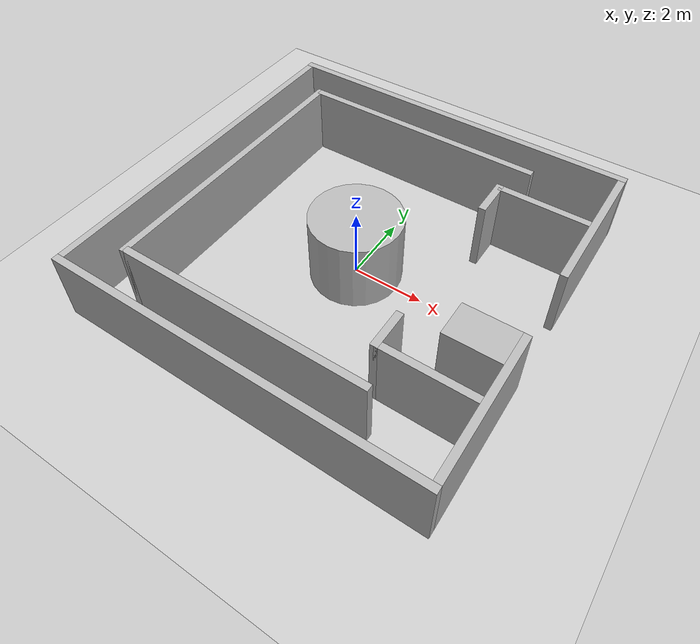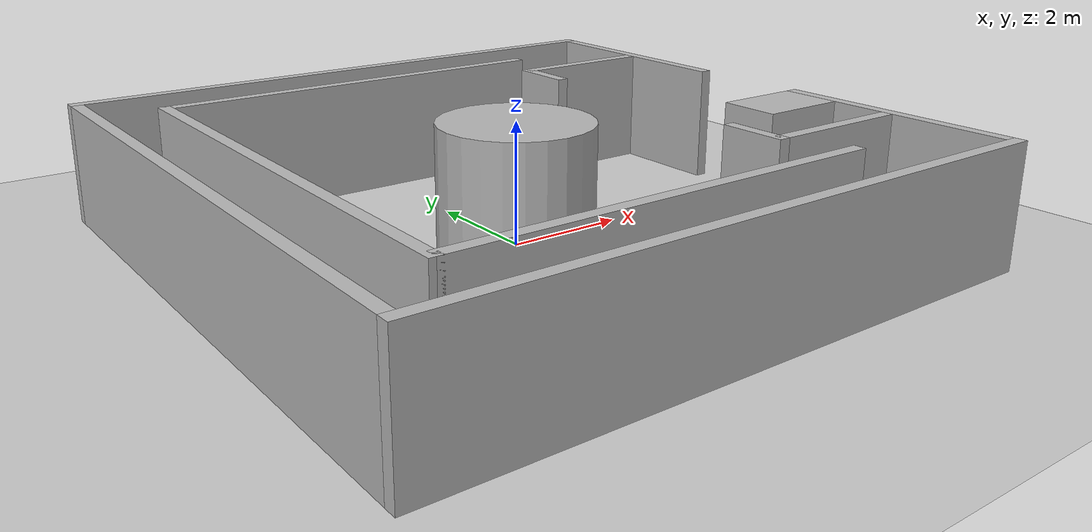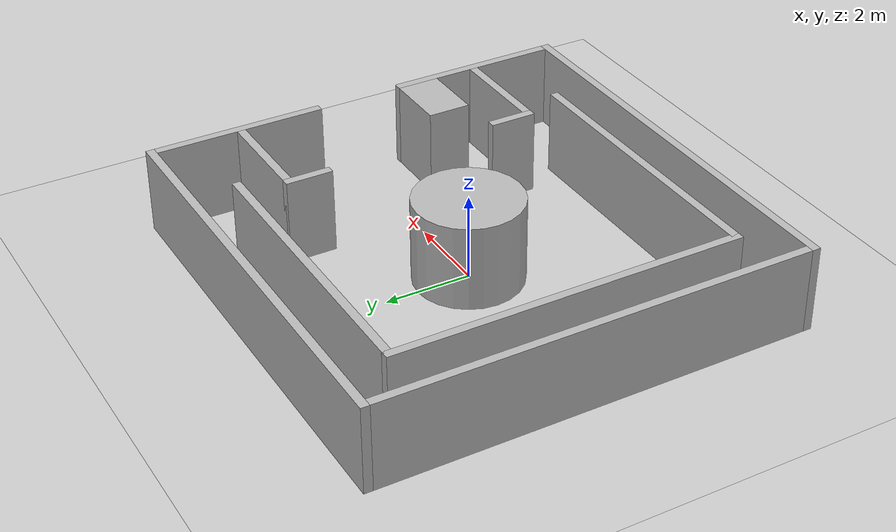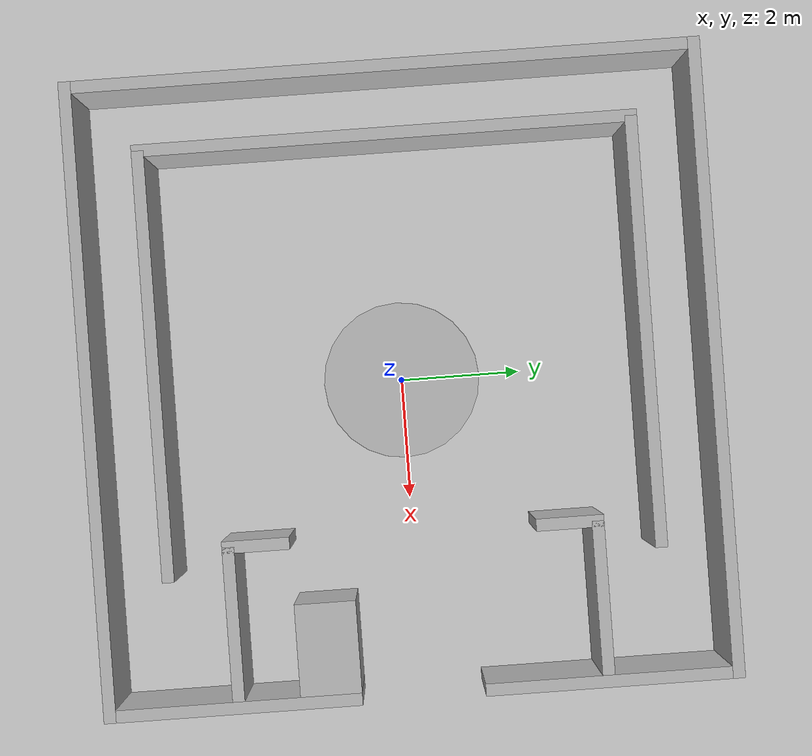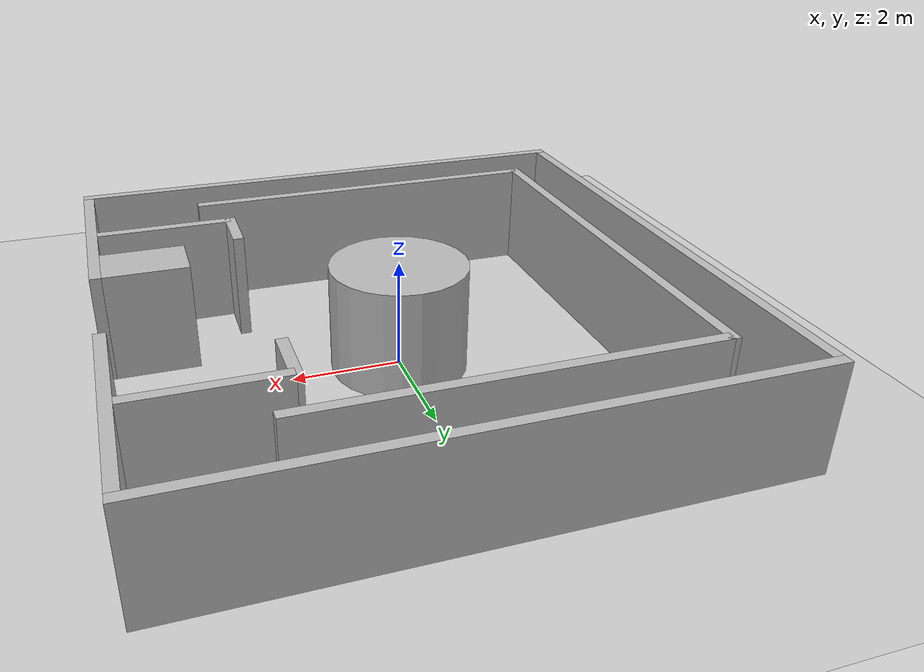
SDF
<?xml version="1.0"?>
<sdf version="1.6">
  <world name="default">

    <!-- A global light source -->
    <include>
      <uri>model://sun</uri>
    </include>

    <!-- A ground plane -->
    <include>
      <uri>model://ground_plane</uri>
    </include>

    <!-- Outer walls -->
    <include>
      <uri>model://outer_walls</uri>
    </include>

    <!-- Icy Interior -->
    <include>
      <uri>model://icy_interior</uri>
    </include>

  </world>
</sdf>

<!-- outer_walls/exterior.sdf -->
<sdf version="1.6">

  <!-- Four walls to form the base section of the map. -->
  <model name="outer_walls">

    <static>true</static>

    <!-- Left Wall. -->
    <link name="wall_left">
      <pose>0 -5.1 1 0 0 0</pose>
      <must_be_base_link>true</must_be_base_link>
      <collision name="left_collision">
        <geometry>
          <box>
            <size>10.4 0.2 2</size>
          </box>
        </geometry>
      </collision>
      <visual name="left_visual">
        <geometry>
          <box>
            <size>10.4 0.2 2</size>
          </box>
        </geometry>
      </visual>
    </link>

    <!-- Right wall. -->
    <link name="wall_right">
      <pose>0 5.1 1 0 0 0</pose>
      <must_be_base_link>true</must_be_base_link>
      <collision name="right_collision">
        <geometry>
          <box>
            <size>10.4 0.2 2</size>
          </box>
        </geometry>
      </collision>
      <visual name="right_visual">
        <geometry>
          <box>
            <size>10.4 0.2 2</size>
          </box>
        </geometry>
      </visual>
    </link>

    <!-- Back wall. -->
    <link name="wall_back">
      <pose>-5.1 0 1 0 0 0</pose>
      <must_be_base_link>true</must_be_base_link>
      <collision name="back_collision">
        <geometry>
          <box>
            <size>0.2 10 2</size>
          </box>
        </geometry>
      </collision>
      <visual name="back_visual">
        <geometry>
          <box>
            <size>0.2 10 2</size>
          </box>
        </geometry>
      </visual>
    </link>

    <!-- Front wall, left half -->
    <link name="wall_front_left">
      <pose>5.1 0 1 0 0 0</pose>
      <must_be_base_link>true</must_be_base_link>
      <collision name="front_left_collision">
        <pose>0 -3 0 0 0 0</pose>
        <geometry>
          <box>
            <size>0.2 4 2</size>
          </box>
        </geometry>
      </collision>
      <visual name="front_left_visual">
        <pose>0 -3 0 0 0 0</pose>
        <geometry>
          <box>
            <size>0.2 4 2</size>
          </box>
        </geometry>
      </visual>
    </link>

    <!-- Front wall, right half -->
    <link name="wall_front_right">
      <pose>5.1 0 1 0 0 0</pose>
      <must_be_base_link>true</must_be_base_link>
      <collision name="front_right_collision">
        <pose>0 3 0 0 0 0</pose>
        <geometry>
          <box>
            <size>0.2 4 2</size>
          </box>
        </geometry>
      </collision>
      <visual name="front_right_visual">
        <pose>0 3 0 0 0 0</pose>
        <geometry>
          <box>
            <size>0.2 4 2</size>
          </box>
        </geometry>
      </visual>
    </link>
  </model>

</sdf>

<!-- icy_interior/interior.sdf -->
<sdf version="1.6">
  <model name="icy_interior">

    <static>true</static>

    <!-- Wall A. -->
    <link name="A">
      <pose>3.75 3 1 0 0 0</pose>
      <must_be_base_link>true</must_be_base_link>
      <collision name="a_col">
        <geometry>
          <box>
            <size>2.5 0.2 2</size>
          </box>
        </geometry>
      </collision>
      <visual name="a_vis">
        <geometry>
          <box>
            <size>2.5 0.2 2</size>
          </box>
        </geometry>
      </visual>
    </link>

    <!-- Wall B. -->
    <link name="B">
      <pose>3.75 -3 1 0 0 0</pose>
      <must_be_base_link>true</must_be_base_link>
      <collision name="b_col">
        <geometry>
          <box>
            <size>2.5 0.2 2</size>
          </box>
        </geometry>
      </collision>
      <visual name="b_vis">
        <geometry>
          <box>
            <size>2.5 0.2 2</size>
          </box>
        </geometry>
      </visual>
    </link>

    <!-- Wall C. (y is not exactly 2.5 to offset for the wall width) -->
    <link name="C">
      <pose>2.5 2.55 1 0 0 0</pose>
      <must_be_base_link>true</must_be_base_link>
      <collision name="c_col">
        <geometry>
          <box>
            <size>0.2 1.1 2</size>
          </box>
        </geometry>
      </collision>
      <visual name="c_vis">
        <geometry>
          <box>
            <size>0.2 1.1 2</size>
          </box>
        </geometry>
      </visual>
    </link>

    <!-- Wall D. (y is not exactly 2.5 to offset for the wall width) -->
    <link name="D">
      <pose>2.5 -2.55 1 0 0 0</pose>
      <must_be_base_link>true</must_be_base_link>
      <collision name="d_col">
        <geometry>
          <box>
            <size>0.2 1.1 2</size>
          </box>
        </geometry>
      </collision>
      <visual name="d_vis">
        <geometry>
          <box>
            <size>0.2 1.1 2</size>
          </box>
        </geometry>
      </visual>
    </link>

    <!-- Cylinder E. -->
    <link name="E">
      <pose>0 0 1 0 0 0</pose>
      <must_be_base_link>true</must_be_base_link>
      <collision name="e_col">
        <geometry>
          <cylinder>
            <radius>1.25</radius>
            <length>2</length>
          </cylinder>
        </geometry>
      </collision>
      <visual name="e_vis">
        <geometry>
          <cylinder>
            <radius>1.25</radius>
            <length>2</length>
          </cylinder>
        </geometry>
      </visual>
    </link>

    <!-- Wall F. -->
    <link name="F">
      <pose>-0.5 4 1 0 0 0</pose>
      <must_be_base_link>true</must_be_base_link>
      <collision name="f_col">
        <geometry>
          <box>
            <size>7 0.2 2</size>
          </box>
        </geometry>
      </collision>
      <visual name="f_vis">
        <geometry>
          <box>
            <size>7 0.2 2</size>
          </box>
        </geometry>
      </visual>
    </link>

    <!-- Wall G. -->
    <link name="G">
      <pose>-0.5 -4 1 0 0 0</pose>
      <must_be_base_link>true</must_be_base_link>
      <collision name="f_col">
        <geometry>
          <box>
            <size>7 0.2 2</size>
          </box>
        </geometry>
      </collision>
      <visual name="f_vis">
        <geometry>
          <box>
            <size>7 0.2 2</size>
          </box>
        </geometry>
      </visual>
    </link>

    <!-- Wall H. -->
    <link name="H">
      <pose>-4 0 1 0 0 0</pose>
      <must_be_base_link>true</must_be_base_link>
      <collision name="f_col">
        <geometry>
          <box>
            <size>0.2 8.2 2</size>
          </box>
        </geometry>
      </collision>
      <visual name="f_vis">
        <geometry>
          <box>
            <size>0.2 8.2 2</size>
          </box>
        </geometry>
      </visual>
    </link>

    <!-- Block I. -->
    <link name="I">
      <pose>4.25 -1.5 1 0 0 0</pose>
      <must_be_base_link>true</must_be_base_link>
      <collision name="i_col">
        <geometry>
          <box>
            <size>1.5 1 2</size>
          </box>
        </geometry>
      </collision>
      <visual name="i_vis">
        <geometry>
          <box>
            <size>1.5 1 2</size>
          </box>
        </geometry>
      </visual>
    </link>

  </model>
</sdf>
